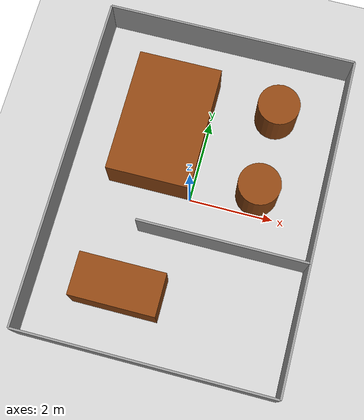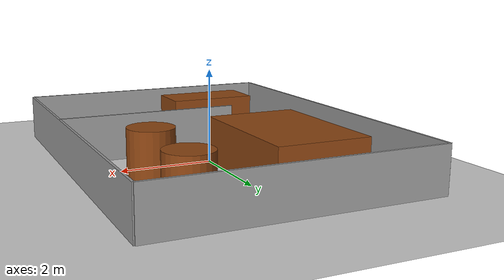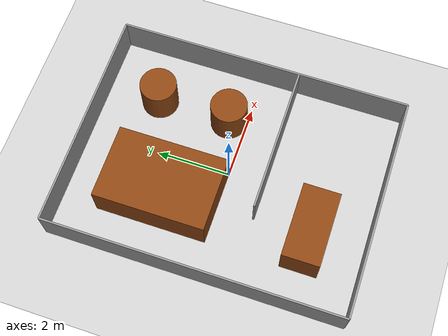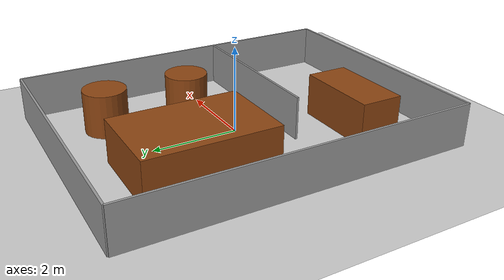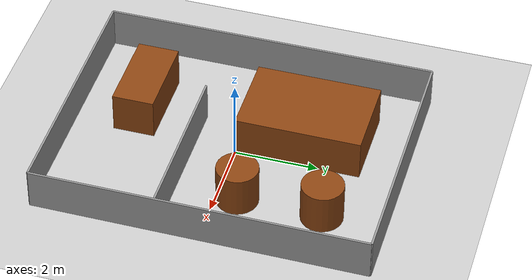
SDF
<?xml version="1.0" ?>
<sdf version="1.8">
  <world name="custom_world">

    <!-- ── Physics ─────────────────────────────────────────── -->
    <physics type="ode">
      <max_step_size>0.01</max_step_size> # is was 0.001
      <real_time_factor>1</real_time_factor>
      <real_time_update_rate>100</real_time_update_rate> #it was 1000
      <ode>
        <solver>
          <type>quick</type>
          <iters>150</iters>
          <precon_iters>0</precon_iters>
          <sor>1.400000</sor>
          <use_dynamic_moi_rescaling>1</use_dynamic_moi_rescaling>
        </solver>
        <constraints>
          <cfm>0.00001</cfm>
          <erp>0.2</erp>
          <contact_max_correcting_vel>2000.000000</contact_max_correcting_vel>
          <contact_surface_layer>0.01000</contact_surface_layer>
        </constraints>
      </ode>
    </physics>

    <!-- ── Plugins ─────────────────────────────────────────── -->
    <plugin filename="gz-sim-physics-system" name="gz::sim::systems::Physics"></plugin>
    <plugin filename="gz-sim-user-commands-system" name="gz::sim::systems::UserCommands"></plugin>
    <plugin filename="gz-sim-scene-broadcaster-system" name="gz::sim::systems::SceneBroadcaster"></plugin>
    <plugin filename="gz-sim-sensors-system" name="gz::sim::systems::Sensors">
      <render_engine>ogre2</render_engine>
    </plugin>
    <plugin filename="gz-sim-imu-system" name="gz::sim::systems::Imu"> </plugin>

        <!--  Ground plane & Sun -->
    <include>
      <uri>https://fuel.gazebosim.org/1.0/OpenRobotics/models/Ground Plane</uri>
    </include>
    <include>
      <uri>https://fuel.gazebosim.org/1.0/OpenRobotics/models/Sun</uri>
    </include>

    <!-- South wall -->
    <model name="wall_south">
      <static>true</static>
      <pose>0 -4 0.5 0 0 0</pose>
      <link name="link">
        <collision name="collision">
          <geometry><box><size>6.0 0.05 1.0</size></box></geometry>
        </collision>
        <visual name="visual">
          <geometry><box><size>6.0 0.05 1.0</size></box></geometry>
          <material><ambient>0.6 0.6 0.6 1</ambient></material>
        </visual>
      </link>
    </model>

    <!-- North wall -->
    <model name="wall_north">
      <static>true</static>
      <pose>0 4 0.5 0 0 0</pose>
      <link name="link">
        <collision name="collision">
          <geometry><box><size>6.0 0.05 1.0</size></box></geometry>
        </collision>
        <visual name="visual">
          <geometry><box><size>6.0 0.05 1.0</size></box></geometry>
          <material><ambient>0.6 0.6 0.6 1</ambient></material>
        </visual>
      </link>
    </model>

    <!-- West wall -->
    <model name="wall_west">
      <static>true</static>
      <pose>-3 0 0.5 0 0 0</pose>
      <link name="link">
        <collision name="collision">
          <geometry><box><size>0.05 8.0 1.0</size></box></geometry>
        </collision>
        <visual name="visual">
          <geometry><box><size>0.05 8.0 1.0</size></box></geometry>
          <material><ambient>0.6 0.6 0.6 1</ambient></material>
        </visual>
      </link>
    </model>

    <!-- East wall -->
    <model name="wall_east">
      <static>true</static>
      <pose>3 0 0.5 0 0 0</pose>
      <link name="link">
        <collision name="collision">
          <geometry><box><size>0.05 8.0 1.0</size></box></geometry>
        </collision>
        <visual name="visual">
          <geometry><box><size>0.05 8.0 1.0</size></box></geometry>
          <material><ambient>0.6 0.6 0.6 1</ambient><diffuse>0.6 0.6 0.6 1</diffuse></material>
        </visual>
      </link>
    </model>

    <!-- Zone divider -->
    <model name="wall_divider">
      <static>true</static>
      <pose>1.0 -1.0 0.5 0 0 0</pose>
      <link name="link">
        <collision name="collision">
          <geometry><box><size>4.0 0.05 1.0</size></box></geometry>
        </collision>
        <visual name="visual">
          <geometry><box><size>4.0 0.05 1.0</size></box></geometry>
          <material><ambient>0.6 0.6 0.6 1</ambient></material>
        </visual>
      </link>
    </model>

    <!-- ════════════════════════════════════════════════════════
         TOP ZONE OBSTACLES
    ════════════════════════════════════════════════════════ -->

    <!--
      box_obstacle_1 : large rectangle (parallelepiped), upper-left quadrant
    -->
    <include>
      <uri>model://big_box_obstacle</uri>
      <name>big_box_obstacle_1</name>
      <pose>-1.0 1.5 0.5 0 0 0</pose>
    </include>

    <!--
      cylinder_obstacle_1 : upper-right, near top wall
    -->
    <include>
      <uri>model://cylinder_obstacle</uri>
      <name>cylinder_obstacle_1</name>
      <pose>1.5 2.5 0.5 0 0 0</pose>
    </include>

    <!--
      cylinder_obstacle_2 : centre-right
    -->
    <include>
      <uri>model://cylinder_obstacle</uri>
      <name>cylinder_obstacle_2</name>
      <pose>1.5 0.5 0.5 0 0 0</pose>
    </include>

    <!-- ════════════════════════════════════════════════════════
         BOTTOM ZONE OBSTACLES
    ════════════════════════════════════════════════════════ -->

    <!--
      box_obstacle_2 : rectangle in bottom-left of bottom zone
    -->
    <include>
      <uri>model://small_box_obstacle</uri>
      <name>small_box_obstacle_1</name>
      <pose>-1.0 -2.5 0.5 0 0 0</pose>
    </include>

  </world>
</sdf>

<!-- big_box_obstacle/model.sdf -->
<!--
  Big Box Obstacle Model
  ==================
  Generic static parallelepiped obstacle.
  Default size: 2.0 × 3.0 × 1.0 m
-->
<sdf version="1.8">
  <model name="big_box_obstacle">
    <static>true</static>

    <link name="link">

      <inertial>
        <mass>1000</mass>
        <inertia>
          <ixx>1</ixx><ixy>0</ixy><ixz>0</ixz>
          <iyy>1</iyy><iyz>0</iyz>
          <izz>1</izz>
        </inertia>
      </inertial>

      <collision name="collision">
        <geometry>
          <box>
            <size>2.0 3.0 1.0</size>
          </box>
        </geometry>
        <surface>
          <contact><ode/></contact>
          <friction><ode><mu>100</mu><mu2>50</mu2></ode></friction>
        </surface>
      </collision>

      <visual name="visual">
        <geometry>
          <box>
            <size>2.0 3.0 1.0</size>
          </box>
        </geometry>
        <material>
          <!-- Brown-grey -->
          <ambient>0.55 0.27 0.07 1</ambient>
          <diffuse>0.55 0.27 0.07 1</diffuse>
          <specular>0.1 0.1 0.1 1</specular>
          <emissive>0 0 0 1</emissive>
        </material>
      </visual>

    </link>
  </model>
</sdf>

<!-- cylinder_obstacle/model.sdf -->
<!--
  Cylinder Obstacle Model
  =======================
  Generic static cylindrical obstacle.
  Default: radius = 0.5 m, length (height) = 1.0 m
-->
<sdf version="1.8">
  <model name="cylinder_obstacle">
    <static>true</static>

    <link name="link">

      <inertial>
        <mass>1000</mass>
        <inertia>
          <ixx>1</ixx><ixy>0</ixy><ixz>0</ixz>
          <iyy>1</iyy><iyz>0</iyz>
          <izz>1</izz>
        </inertia>
      </inertial>

      <collision name="collision">
        <geometry>
          <cylinder>
            <radius>0.5</radius>
            <length>1.0</length>
          </cylinder>
        </geometry>
        <surface>
          <contact><ode/></contact>
          <friction><ode><mu>100</mu><mu2>50</mu2></ode></friction>
        </surface>
      </collision>

      <visual name="visual">
        <geometry>
          <cylinder>
            <radius>0.5</radius>
            <length>1.0</length>
          </cylinder>
        </geometry>
        <material>
          <!-- Brown-grey -->
          <ambient>0.55 0.27 0.07 1</ambient>
          <diffuse>0.55 0.27 0.07 1</diffuse>
          <specular>0.1 0.1 0.1 1</specular>
          <emissive>0 0 0 1</emissive>
        </material>
      </visual>

    </link>
  </model>
</sdf>

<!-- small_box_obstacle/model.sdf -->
<!--
  Small Box Obstacle Model
  ==================
  Generic static parallelepiped obstacle.
  Default size: 2.0 × 1.0 × 1.0 m

-->
<sdf version="1.8">
  <model name="small_box_obstacle">
    <static>true</static>

    <link name="link">

      <inertial>
        <mass>1000</mass>
        <inertia>
          <ixx>1</ixx><ixy>0</ixy><ixz>0</ixz>
          <iyy>1</iyy><iyz>0</iyz>
          <izz>1</izz>
        </inertia>
      </inertial>

      <collision name="collision">
        <geometry>
          <box>
            <size>2.0 1.0 1.0</size>
          </box>
        </geometry>
        <surface>
          <contact><ode/></contact>
          <friction><ode><mu>100</mu><mu2>50</mu2></ode></friction>
        </surface>
      </collision>

      <visual name="visual">
        <geometry>
          <box>
            <size>2.0 1.0 1.0</size>
          </box>
        </geometry>
        <material>
          <!-- Brown-grey -->
          <ambient>0.55 0.27 0.07 1</ambient>
          <diffuse>0.55 0.27 0.07 1</diffuse>
          <specular>0.1 0.1 0.1 1</specular>
          <emissive>0 0 0 1</emissive>
        </material>
      </visual>

    </link>
  </model>
</sdf>
